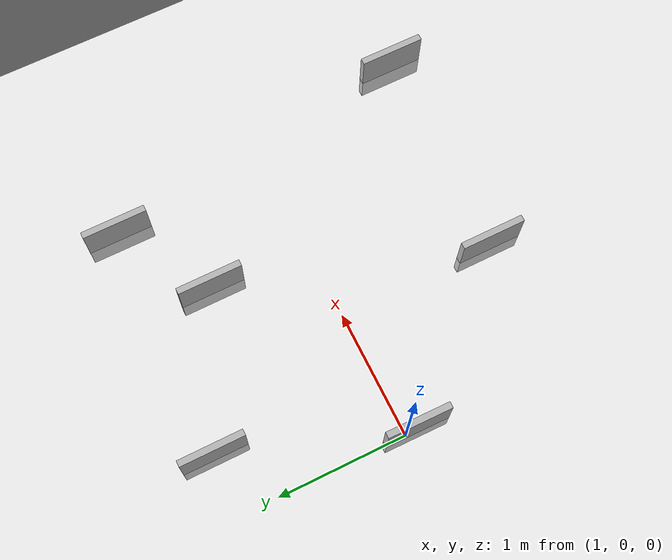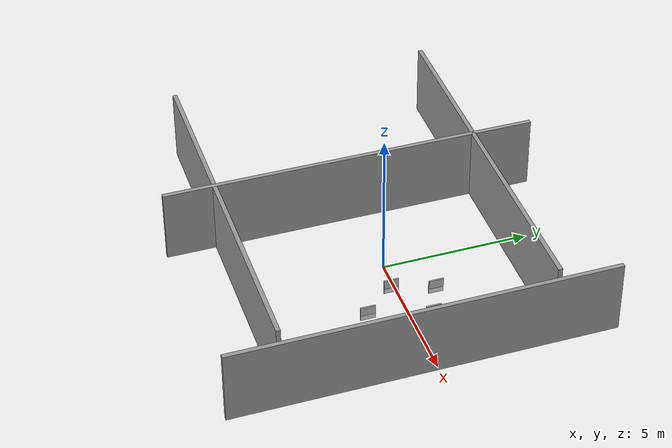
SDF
<sdf version="1.7">
 <world name="default">
  <scene><ambient>0.4 0.4 0.4 1</ambient><background>0.7 0.7 0.7 1</background><shadows>1</shadows></scene>
  <light name="sun" type="directional">
   <pose>0 0 10 0 -0 0</pose>
   <diffuse>0.8 0.8 0.8 1</diffuse>
   <specular>0.2 0.2 0.2 1</specular>
   <attenuation>
    <range>1000</range>
    <constant>0.9</constant>
    <linear>0.01</linear>
    <quadratic>0.001</quadratic>
   </attenuation>
   <direction>-0.5 0.1 -0.9</direction>
   <spot><inner_angle>0</inner_angle><outer_angle>0</outer_angle><falloff>0</falloff></spot>
  </light>
  <model name="ground_plane">
   <static>1</static>
   <link name="link">
    <collision name="collision">
     <geometry><plane><normal>0 0 1</normal><size>100 100</size></plane></geometry>
     <surface><friction><ode><mu>100</mu><mu2>50</mu2></ode></friction></surface>
    </collision>
    <visual name="visual">
     <cast_shadows>0</cast_shadows>
     <geometry><plane><normal>0 0 1</normal><size>100 100</size></plane></geometry>
     <material>
      <script><uri>file://media/materials/scripts/gazebo.material</uri><name>Gazebo/Grey</name></script>
     </material>
    </visual>
   </link>
  </model>
  <physics type="ode">
   <real_time_update_rate>1000</real_time_update_rate>
   <max_step_size>0.001</max_step_size>
   <real_time_factor>1</real_time_factor>
   <ode>
    <solver>
     <type>quick</type>
     <iters>150</iters>
     <precon_iters>0</precon_iters>
     <sor>1.4</sor>
     <use_dynamic_moi_rescaling>1</use_dynamic_moi_rescaling>
    </solver>
    <constraints>
     <cfm>1e-05</cfm>
     <erp>0.2</erp>
     <contact_max_correcting_vel>2000</contact_max_correcting_vel>
     <contact_surface_layer>0.01</contact_surface_layer>
    </constraints>
   </ode>
  </physics>
  <model name="box1">
   <pose>1.00498 -0.090244 0.05 0 -3e-06 -0.011774</pose>
   <link name="link">
    <collision name="collision"><geometry><box><size>0.05 0.5 0.1</size></box></geometry></collision>
    <visual name="visual"><geometry><box><size>0.05 0.5 0.5</size></box></geometry></visual>
    <inertial>
     <inertia><ixx>1</ixx><ixy>0</ixy><ixz>0</ixz><iyy>1</iyy><iyz>0</iyz><izz>1</izz></inertia>
     <mass>1</mass>
    </inertial>
   </link>
   <plugin name="model_push" filename="libbox_linear.so"/>
  </model>
  <model name="box2">
   <pose>1.46337 1.27568 0.05 -0 -4e-06 -0.000917</pose>
   <link name="link">
    <collision name="collision"><geometry><box><size>0.05 0.5 0.1</size></box></geometry></collision>
    <visual name="visual"><geometry><box><size>0.05 0.5 0.5</size></box></geometry></visual>
    <inertial>
     <inertia><ixx>1</ixx><ixy>0</ixy><ixz>0</ixz><iyy>1</iyy><iyz>0</iyz><izz>1</izz></inertia>
     <mass>1</mass>
    </inertial>
   </link>
   <plugin name="model_push" filename="libbox_linear.so"/>
  </model>
  <model name="box3">
   <pose>2 -1.22506 0.05 0 -0 0</pose>
   <link name="link">
    <collision name="collision"><geometry><box><size>0.05 0.5 0.1</size></box></geometry></collision>
    <visual name="visual"><geometry><box><size>0.05 0.5 0.5</size></box></geometry></visual>
    <inertial>
     <inertia><ixx>1</ixx><ixy>0</ixy><ixz>0</ixz><iyy>1</iyy><iyz>0</iyz><izz>1</izz></inertia>
     <mass>1</mass>
    </inertial>
   </link>
   <plugin name="model_push" filename="libbox_linear.so"/>
  </model>
  <model name="box4">
   <pose>2.6 0.777307 0.05 0 -0 0</pose>
   <link name="link">
    <collision name="collision"><geometry><box><size>0.05 0.5 0.1</size></box></geometry></collision>
    <visual name="visual"><geometry><box><size>0.05 0.5 0.5</size></box></geometry></visual>
    <inertial>
     <inertia><ixx>1</ixx><ixy>0</ixy><ixz>0</ixz><iyy>1</iyy><iyz>0</iyz><izz>1</izz></inertia>
     <mass>1</mass>
    </inertial>
   </link>
   <plugin name="model_push" filename="libbox_linear.so"/>
  </model>
  <model name="box5">
   <pose>3.3 1.22506 0.05 0 -0 0</pose>
   <link name="link">
    <collision name="collision"><geometry><box><size>0.05 0.5 0.1</size></box></geometry></collision>
    <visual name="visual"><geometry><box><size>0.05 0.5 0.5</size></box></geometry></visual>
    <inertial>
     <inertia><ixx>1</ixx><ixy>0</ixy><ixz>0</ixz><iyy>1</iyy><iyz>0</iyz><izz>1</izz></inertia>
     <mass>1</mass>
    </inertial>
   </link>
   <plugin name="model_push" filename="libbox_linear.so"/>
  </model>
  <model name="box6">
   <pose>3.68002 -1.26359 0.05 -0 -2e-06 2e-06</pose>
   <link name="link">
    <collision name="collision"><geometry><box><size>0.05 0.5 0.1</size></box></geometry></collision>
    <visual name="visual"><geometry><box><size>0.05 0.5 0.5</size></box></geometry></visual>
    <inertial>
     <inertia><ixx>1</ixx><ixy>0</ixy><ixz>0</ixz><iyy>1</iyy><iyz>0</iyz><izz>1</izz></inertia>
     <mass>1</mass>
    </inertial>
   </link>
   <plugin name="model_push" filename="libbox_linear.so"/>
  </model>
  <model name="Wall">
   <pose>10 0 -98796.6 0 -0 0</pose>
   <link name="link">
    <collision name="collision"><geometry><box><size>2 0 0</size></box></geometry></collision>
    <visual name="visual"><geometry><box><size>2 0 0</size></box></geometry></visual>
    <inertial>
     <inertia><ixx>1</ixx><ixy>0</ixy><ixz>0</ixz><iyy>1</iyy><iyz>0</iyz><izz>1</izz></inertia>
     <mass>1</mass>
    </inertial>
   </link>
  </model>
  <gravity>0 0 -9.8</gravity>
  <magnetic_field>6e-06 2.3e-05 -4.2e-05</magnetic_field>
  <atmosphere type="adiabatic"/>
  <spherical_coordinates>
   <surface_model>EARTH_WGS84</surface_model>
   <latitude_deg>0</latitude_deg>
   <longitude_deg>0</longitude_deg>
   <elevation>0</elevation>
   <heading_deg>0</heading_deg>
  </spherical_coordinates>
  <model name="Untitled">
   <pose>3.31185 -0.379654 0 0 -0 0</pose>
   <link name="Wall_0">
    <collision name="Wall_0_Collision">
     <geometry><box><size>12.75 0.15 2.5</size></box></geometry>
     <pose>0 0 1.25 0 -0 0</pose>
    </collision>
    <visual name="Wall_0_Visual">
     <pose>0 0 1.25 0 -0 0</pose>
     <geometry><box><size>12.75 0.15 2.5</size></box></geometry>
     <material>
      <script><uri>file://media/materials/scripts/gazebo.material</uri><name>Gazebo/Grey</name></script>
      <ambient>1 1 1 1</ambient>
     </material>
     <meta><layer>0</layer></meta>
    </visual>
    <pose>1.7525 0 0 0 -0 1.5708</pose>
   </link>
   <static>1</static>
  </model>
  <model name="Untitled_0">
   <pose>-1.80665 -3.06029 0 0 0 -1.58271</pose>
   <link name="Wall_0">
    <collision name="Wall_0_Collision">
     <geometry><box><size>12.75 0.15 2.5</size></box></geometry>
     <pose>0 0 1.25 0 -0 0</pose>
    </collision>
    <visual name="Wall_0_Visual">
     <pose>0 0 1.25 0 -0 0</pose>
     <geometry><box><size>12.75 0.15 2.5</size></box></geometry>
     <material>
      <script><uri>file://media/materials/scripts/gazebo.material</uri><name>Gazebo/Grey</name></script>
      <ambient>1 1 1 1</ambient>
     </material>
     <meta><layer>0</layer></meta>
    </visual>
    <pose>1.7525 0 0 0 -0 1.5708</pose>
   </link>
   <static>1</static>
  </model>
  <model name="Untitled_0_clone">
   <pose>-1.70173 5.89773 0 0 0 -1.58271</pose>
   <link name="Wall_0">
    <collision name="Wall_0_Collision">
     <geometry><box><size>12.75 0.15 2.5</size></box></geometry>
     <pose>0 0 1.25 0 -0 0</pose>
    </collision>
    <visual name="Wall_0_Visual">
     <pose>0 0 1.25 0 -0 0</pose>
     <geometry><box><size>12.75 0.15 2.5</size></box></geometry>
     <material>
      <script><uri>file://media/materials/scripts/gazebo.material</uri><name>Gazebo/Grey</name></script>
      <ambient>1 1 1 1</ambient>
     </material>
     <meta><layer>0</layer></meta>
    </visual>
    <pose>1.7525 0 0 0 -0 1.5708</pose>
   </link>
   <static>1</static>
  </model>
  <model name="Untitled_clone">
   <pose>-4.59792 -0.151337 0 0 -0 0</pose>
   <link name="Wall_0">
    <collision name="Wall_0_Collision">
     <geometry><box><size>12.75 0.15 2.5</size></box></geometry>
     <pose>0 0 1.25 0 -0 0</pose>
    </collision>
    <visual name="Wall_0_Visual">
     <pose>0 0 1.25 0 -0 0</pose>
     <geometry><box><size>12.75 0.15 2.5</size></box></geometry>
     <material>
      <script><uri>file://media/materials/scripts/gazebo.material</uri><name>Gazebo/Grey</name></script>
      <ambient>1 1 1 1</ambient>
     </material>
     <meta><layer>0</layer></meta>
    </visual>
    <pose>1.7525 0 0 0 -0 1.5708</pose>
   </link>
   <static>1</static>
  </model>
 </world>
</sdf>
